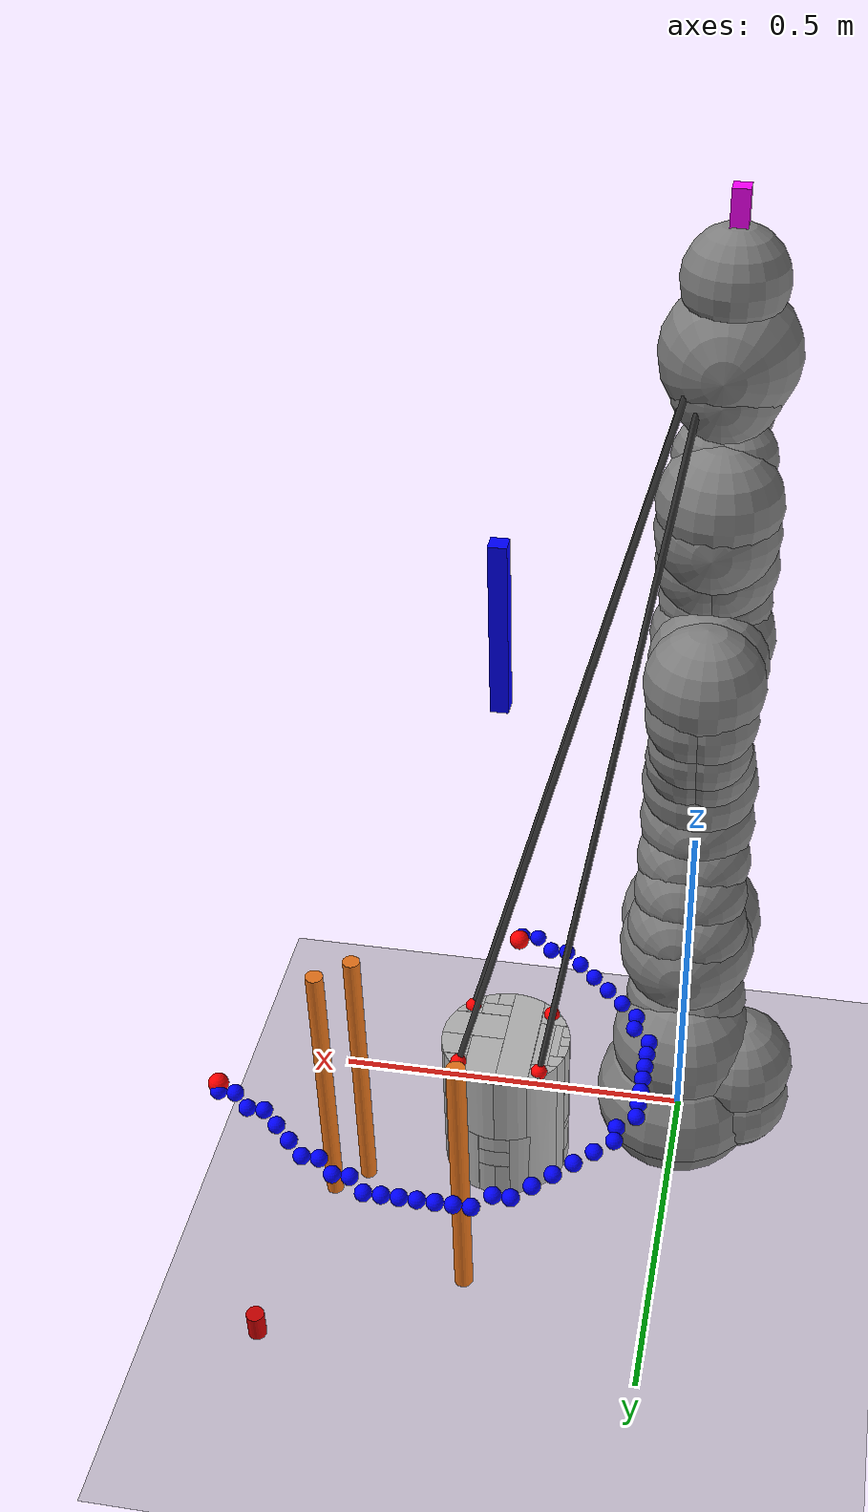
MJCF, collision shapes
<mujoco model="iiwa14_lifting_scene_sensors_compatible">

  <!-- 加载机械臂 -->
  <include file="iiwa14.xml"/>

  <option integrator="implicitfast" gravity="0 0 -9.81"/>

  <asset>
    <material name="groundplane" rgba="0.3 0.3 0.3 1"/>
    <material name="concrete" rgba="0.7 0.7 0.7 1.0"/>
    <material name="rope" rgba="0.2 0.2 0.2 1"/>
    <material name="red" rgba="0.8 0 0 1"/>
    <material name="steel" rgba="0.6 0.6 0.6 1"/>
    <material name="obstacle" rgba="0.9 0.45 0.1 1"/>

    <mesh name="hollow_cylinder_convex_0"  file="hollow_cylinder_convex_0.stl"/>
    <mesh name="hollow_cylinder_convex_1"  file="hollow_cylinder_convex_1.stl"/>
    <mesh name="hollow_cylinder_convex_2"  file="hollow_cylinder_convex_2.stl"/>
    <mesh name="hollow_cylinder_convex_3"  file="hollow_cylinder_convex_3.stl"/>
    <mesh name="hollow_cylinder_convex_4"  file="hollow_cylinder_convex_4.stl"/>
    <mesh name="hollow_cylinder_convex_5"  file="hollow_cylinder_convex_5.stl"/>
    <mesh name="hollow_cylinder_convex_6"  file="hollow_cylinder_convex_6.stl"/>
    <mesh name="hollow_cylinder_convex_7"  file="hollow_cylinder_convex_7.stl"/>
    <mesh name="hollow_cylinder_convex_8"  file="hollow_cylinder_convex_8.stl"/>
    <mesh name="hollow_cylinder_convex_9"  file="hollow_cylinder_convex_9.stl"/>
    <mesh name="hollow_cylinder_convex_10"  file="hollow_cylinder_convex_10.stl"/>
    <mesh name="hollow_cylinder_convex_11"  file="hollow_cylinder_convex_11.stl"/>
    <mesh name="hollow_cylinder_convex_12"  file="hollow_cylinder_convex_12.stl"/>
    <mesh name="hollow_cylinder_convex_13"  file="hollow_cylinder_convex_13.stl"/>
    <mesh name="hollow_cylinder_convex_14"  file="hollow_cylinder_convex_14.stl"/>
    <mesh name="hollow_cylinder_convex_15"  file="hollow_cylinder_convex_15.stl"/>
    <mesh name="hollow_cylinder_convex_16"  file="hollow_cylinder_convex_16.stl"/>
    <mesh name="hollow_cylinder_convex_17"  file="hollow_cylinder_convex_17.stl"/>
    <mesh name="hollow_cylinder_convex_18"  file="hollow_cylinder_convex_18.stl"/>
    <mesh name="hollow_cylinder_convex_19"  file="hollow_cylinder_convex_19.stl"/>
    <mesh name="hollow_cylinder_convex_20"  file="hollow_cylinder_convex_20.stl"/>
    <mesh name="hollow_cylinder_convex_21"  file="hollow_cylinder_convex_21.stl"/>
    <mesh name="hollow_cylinder_convex_22"  file="hollow_cylinder_convex_22.stl"/>
    <mesh name="hollow_cylinder_convex_23"  file="hollow_cylinder_convex_23.stl"/>
    <mesh name="hollow_cylinder_convex_24"  file="hollow_cylinder_convex_24.stl"/>
    <mesh name="hollow_cylinder_convex_25"  file="hollow_cylinder_convex_25.stl"/>
    <mesh name="hollow_cylinder_convex_26"  file="hollow_cylinder_convex_26.stl"/>
    <mesh name="hollow_cylinder_convex_27"  file="hollow_cylinder_convex_27.stl"/>
    <mesh name="hollow_cylinder_convex_28"  file="hollow_cylinder_convex_28.stl"/>
    <mesh name="hollow_cylinder_convex_29"  file="hollow_cylinder_convex_29.stl"/>
    <mesh name="hollow_cylinder_convex_30"  file="hollow_cylinder_convex_30.stl"/>
    <mesh name="hollow_cylinder_convex_31"  file="hollow_cylinder_convex_31.stl"/>
    <mesh name="hollow_cylinder_convex_32"  file="hollow_cylinder_convex_32.stl"/>
    <mesh name="hollow_cylinder_convex_33"  file="hollow_cylinder_convex_33.stl"/>
    <mesh name="hollow_cylinder_convex_34"  file="hollow_cylinder_convex_34.stl"/>
    <mesh name="hollow_cylinder_convex_35"  file="hollow_cylinder_convex_35.stl"/>
    <mesh name="hollow_cylinder_convex_36"  file="hollow_cylinder_convex_36.stl"/>
    <mesh name="hollow_cylinder_convex_37"  file="hollow_cylinder_convex_37.stl"/>
    <mesh name="hollow_cylinder_convex_38"  file="hollow_cylinder_convex_38.stl"/>
    <mesh name="hollow_cylinder_convex_39"  file="hollow_cylinder_convex_39.stl"/>
    <mesh name="hollow_cylinder_convex_40"  file="hollow_cylinder_convex_40.stl"/>
    <mesh name="hollow_cylinder_convex_41"  file="hollow_cylinder_convex_41.stl"/>
    <mesh name="hollow_cylinder_convex_42"  file="hollow_cylinder_convex_42.stl"/>
    <mesh name="hollow_cylinder_convex_43"  file="hollow_cylinder_convex_43.stl"/>
    <mesh name="hollow_cylinder_convex_44"  file="hollow_cylinder_convex_44.stl"/>
    <mesh name="hollow_cylinder_convex_45"  file="hollow_cylinder_convex_45.stl"/>
    <mesh name="hollow_cylinder_convex_46"  file="hollow_cylinder_convex_46.stl"/>
    <mesh name="hollow_cylinder_convex_47"  file="hollow_cylinder_convex_47.stl"/>
    <mesh name="hollow_cylinder_convex_48"  file="hollow_cylinder_convex_48.stl"/>
    <mesh name="hollow_cylinder_convex_49"  file="hollow_cylinder_convex_49.stl"/>
    <mesh name="hollow_cylinder_convex_50"  file="hollow_cylinder_convex_50.stl"/>
    <mesh name="hollow_cylinder_convex_51"  file="hollow_cylinder_convex_51.stl"/>
    <mesh name="hollow_cylinder_convex_52"  file="hollow_cylinder_convex_52.stl"/>
    <mesh name="hollow_cylinder_convex_53"  file="hollow_cylinder_convex_53.stl"/>
    <mesh name="hollow_cylinder_convex_54"  file="hollow_cylinder_convex_54.stl"/>
    <mesh name="hollow_cylinder_convex_55"  file="hollow_cylinder_convex_55.stl"/>
    <mesh name="hollow_cylinder_convex_56"  file="hollow_cylinder_convex_56.stl"/>
    <mesh name="hollow_cylinder_convex_57"  file="hollow_cylinder_convex_57.stl"/>
    <mesh name="hollow_cylinder_convex_58"  file="hollow_cylinder_convex_58.stl"/>
    <mesh name="hollow_cylinder_convex_59"  file="hollow_cylinder_convex_59.stl"/>
    <mesh name="hollow_cylinder_convex_60"  file="hollow_cylinder_convex_60.stl"/>
    <mesh name="hollow_cylinder_convex_61"  file="hollow_cylinder_convex_61.stl"/>
    <mesh name="hollow_cylinder_convex_62"  file="hollow_cylinder_convex_62.stl"/>
    <mesh name="hollow_cylinder_convex_63" file="hollow_cylinder_convex_63.stl"/>
  </asset>

  <visual>
    <global offwidth="640" offheight="480"/>
  </visual>

  <worldbody>
    <!-- 光照与地面 -->
    <light pos="1.5 0 1.5" dir="1 0 -1" directional="true"/>
    <geom name="floor" size="0 0 0.05" type="plane" material="groundplane"/>

    <!-- 路径障碍物 0 (静态) -->
    <body name="obstacle_0" pos="0.4460238408369178 0.282684224144374 0.25">
      <geom type="cylinder" size="0.011411688887367247 0.2" pos="0 0 0" material="obstacle" contype="1" conaffinity="1"/>
    </body>

    <!-- 路径障碍物 1 (静态) -->
    <body name="obstacle_1" pos="0.40692537642809484 0.2483151245426632 0.25">
      <geom type="cylinder" size="0.011008938884365563 0.2" pos="0 0 0" material="obstacle" contype="1" conaffinity="1"/>
    </body>

    <!-- 路径障碍物 2 (静态) -->
    <body name="obstacle_2" pos="0.24027390123127024 0.40839523592196725 0.25">
      <geom type="cylinder" size="0.01204332152719229 0.2" pos="0 0 0" material="obstacle" contype="1" conaffinity="1"/>
    </body>

    <!-- 规划路径点 0 (可视化) -->
    <body name="path_pt_0" pos="0.19823057970407798 0.18730618565829765 0.47000000000000003">
      <geom type="sphere" size="0.01" rgba="0 0 1 1" contype="0" conaffinity="0"/>
    </body>

    <!-- 规划路径点 1 (可视化) -->
    <body name="path_pt_1" pos="0.17823057970407796 0.18730618565829765 0.47000000000000003">
      <geom type="sphere" size="0.01" rgba="0 0 1 1" contype="0" conaffinity="0"/>
    </body>

    <!-- 规划路径点 2 (可视化) -->
    <body name="path_pt_2" pos="0.15823057970407794 0.20730618565829767 0.47000000000000003">
      <geom type="sphere" size="0.01" rgba="0 0 1 1" contype="0" conaffinity="0"/>
    </body>

    <!-- 规划路径点 3 (可视化) -->
    <body name="path_pt_3" pos="0.13823057970407798 0.20730618565829767 0.47000000000000003">
      <geom type="sphere" size="0.01" rgba="0 0 1 1" contype="0" conaffinity="0"/>
    </body>

    <!-- 规划路径点 4 (可视化) -->
    <body name="path_pt_4" pos="0.11823057970407796 0.22730618565829763 0.47000000000000003">
      <geom type="sphere" size="0.01" rgba="0 0 1 1" contype="0" conaffinity="0"/>
    </body>

    <!-- 规划路径点 5 (可视化) -->
    <body name="path_pt_5" pos="0.09823057970407795 0.24730618565829765 0.47000000000000003">
      <geom type="sphere" size="0.01" rgba="0 0 1 1" contype="0" conaffinity="0"/>
    </body>

    <!-- 规划路径点 6 (可视化) -->
    <body name="path_pt_6" pos="0.07823057970407798 0.26730618565829767 0.47000000000000003">
      <geom type="sphere" size="0.01" rgba="0 0 1 1" contype="0" conaffinity="0"/>
    </body>

    <!-- 规划路径点 7 (可视化) -->
    <body name="path_pt_7" pos="0.05823057970407797 0.2873061856582977 0.47000000000000003">
      <geom type="sphere" size="0.01" rgba="0 0 1 1" contype="0" conaffinity="0"/>
    </body>

    <!-- 规划路径点 8 (可视化) -->
    <body name="path_pt_8" pos="0.03823057970407795 0.3073061856582977 0.47000000000000003">
      <geom type="sphere" size="0.01" rgba="0 0 1 1" contype="0" conaffinity="0"/>
    </body>

    <!-- 规划路径点 9 (可视化) -->
    <body name="path_pt_9" pos="0.03823057970407795 0.3273061856582976 0.47000000000000003">
      <geom type="sphere" size="0.01" rgba="0 0 1 1" contype="0" conaffinity="0"/>
    </body>

    <!-- 规划路径点 10 (可视化) -->
    <body name="path_pt_10" pos="0.01823057970407793 0.34730618565829763 0.47000000000000003">
      <geom type="sphere" size="0.01" rgba="0 0 1 1" contype="0" conaffinity="0"/>
    </body>

    <!-- 规划路径点 11 (可视化) -->
    <body name="path_pt_11" pos="0.01823057970407793 0.36730618565829765 0.47000000000000003">
      <geom type="sphere" size="0.01" rgba="0 0 1 1" contype="0" conaffinity="0"/>
    </body>

    <!-- 规划路径点 12 (可视化) -->
    <body name="path_pt_12" pos="0.01823057970407793 0.38730618565829766 0.47000000000000003">
      <geom type="sphere" size="0.01" rgba="0 0 1 1" contype="0" conaffinity="0"/>
    </body>

    <!-- 规划路径点 13 (可视化) -->
    <body name="path_pt_13" pos="0.01823057970407793 0.4073061856582977 0.47000000000000003">
      <geom type="sphere" size="0.01" rgba="0 0 1 1" contype="0" conaffinity="0"/>
    </body>

    <!-- 规划路径点 14 (可视化) -->
    <body name="path_pt_14" pos="0.01823057970407793 0.4273061856582977 0.47000000000000003">
      <geom type="sphere" size="0.01" rgba="0 0 1 1" contype="0" conaffinity="0"/>
    </body>

    <!-- 规划路径点 15 (可视化) -->
    <body name="path_pt_15" pos="0.01823057970407793 0.4473061856582976 0.47000000000000003">
      <geom type="sphere" size="0.01" rgba="0 0 1 1" contype="0" conaffinity="0"/>
    </body>

    <!-- 规划路径点 16 (可视化) -->
    <body name="path_pt_16" pos="0.01823057970407793 0.4673061856582976 0.47000000000000003">
      <geom type="sphere" size="0.01" rgba="0 0 1 1" contype="0" conaffinity="0"/>
    </body>

    <!-- 规划路径点 17 (可视化) -->
    <body name="path_pt_17" pos="0.03823057970407795 0.48730618565829764 0.47000000000000003">
      <geom type="sphere" size="0.01" rgba="0 0 1 1" contype="0" conaffinity="0"/>
    </body>

    <!-- 规划路径点 18 (可视化) -->
    <body name="path_pt_18" pos="0.03823057970407795 0.5073061856582977 0.47000000000000003">
      <geom type="sphere" size="0.01" rgba="0 0 1 1" contype="0" conaffinity="0"/>
    </body>

    <!-- 规划路径点 19 (可视化) -->
    <body name="path_pt_19" pos="0.05823057970407797 0.5273061856582977 0.47000000000000003">
      <geom type="sphere" size="0.01" rgba="0 0 1 1" contype="0" conaffinity="0"/>
    </body>

    <!-- 规划路径点 20 (可视化) -->
    <body name="path_pt_20" pos="0.07823057970407798 0.5473061856582977 0.47000000000000003">
      <geom type="sphere" size="0.01" rgba="0 0 1 1" contype="0" conaffinity="0"/>
    </body>

    <!-- 规划路径点 21 (可视化) -->
    <body name="path_pt_21" pos="0.09823057970407795 0.5673061856582977 0.47000000000000003">
      <geom type="sphere" size="0.01" rgba="0 0 1 1" contype="0" conaffinity="0"/>
    </body>

    <!-- 规划路径点 22 (可视化) -->
    <body name="path_pt_22" pos="0.11823057970407796 0.5873061856582976 0.47000000000000003">
      <geom type="sphere" size="0.01" rgba="0 0 1 1" contype="0" conaffinity="0"/>
    </body>

    <!-- 规划路径点 23 (可视化) -->
    <body name="path_pt_23" pos="0.13823057970407798 0.6073061856582976 0.47000000000000003">
      <geom type="sphere" size="0.01" rgba="0 0 1 1" contype="0" conaffinity="0"/>
    </body>

    <!-- 规划路径点 24 (可视化) -->
    <body name="path_pt_24" pos="0.15823057970407794 0.6073061856582976 0.47000000000000003">
      <geom type="sphere" size="0.01" rgba="0 0 1 1" contype="0" conaffinity="0"/>
    </body>

    <!-- 规划路径点 25 (可视化) -->
    <body name="path_pt_25" pos="0.17823057970407796 0.6273061856582977 0.47000000000000003">
      <geom type="sphere" size="0.01" rgba="0 0 1 1" contype="0" conaffinity="0"/>
    </body>

    <!-- 规划路径点 26 (可视化) -->
    <body name="path_pt_26" pos="0.19823057970407798 0.6273061856582977 0.47000000000000003">
      <geom type="sphere" size="0.01" rgba="0 0 1 1" contype="0" conaffinity="0"/>
    </body>

    <!-- 规划路径点 27 (可视化) -->
    <body name="path_pt_27" pos="0.21823057970407794 0.6273061856582977 0.47000000000000003">
      <geom type="sphere" size="0.01" rgba="0 0 1 1" contype="0" conaffinity="0"/>
    </body>

    <!-- 规划路径点 28 (可视化) -->
    <body name="path_pt_28" pos="0.23823057970407796 0.6273061856582977 0.47000000000000003">
      <geom type="sphere" size="0.01" rgba="0 0 1 1" contype="0" conaffinity="0"/>
    </body>

    <!-- 规划路径点 29 (可视化) -->
    <body name="path_pt_29" pos="0.258230579704078 0.6273061856582977 0.47000000000000003">
      <geom type="sphere" size="0.01" rgba="0 0 1 1" contype="0" conaffinity="0"/>
    </body>

    <!-- 规划路径点 30 (可视化) -->
    <body name="path_pt_30" pos="0.278230579704078 0.6273061856582977 0.47000000000000003">
      <geom type="sphere" size="0.01" rgba="0 0 1 1" contype="0" conaffinity="0"/>
    </body>

    <!-- 规划路径点 31 (可视化) -->
    <body name="path_pt_31" pos="0.298230579704078 0.6273061856582977 0.47000000000000003">
      <geom type="sphere" size="0.01" rgba="0 0 1 1" contype="0" conaffinity="0"/>
    </body>

    <!-- 规划路径点 32 (可视化) -->
    <body name="path_pt_32" pos="0.3182305797040779 0.6073061856582976 0.47000000000000003">
      <geom type="sphere" size="0.01" rgba="0 0 1 1" contype="0" conaffinity="0"/>
    </body>

    <!-- 规划路径点 33 (可视化) -->
    <body name="path_pt_33" pos="0.33823057970407794 0.6073061856582976 0.47000000000000003">
      <geom type="sphere" size="0.01" rgba="0 0 1 1" contype="0" conaffinity="0"/>
    </body>

    <!-- 规划路径点 34 (可视化) -->
    <body name="path_pt_34" pos="0.35823057970407796 0.5873061856582976 0.47000000000000003">
      <geom type="sphere" size="0.01" rgba="0 0 1 1" contype="0" conaffinity="0"/>
    </body>

    <!-- 规划路径点 35 (可视化) -->
    <body name="path_pt_35" pos="0.378230579704078 0.5873061856582976 0.47000000000000003">
      <geom type="sphere" size="0.01" rgba="0 0 1 1" contype="0" conaffinity="0"/>
    </body>

    <!-- 规划路径点 36 (可视化) -->
    <body name="path_pt_36" pos="0.398230579704078 0.5673061856582977 0.47000000000000003">
      <geom type="sphere" size="0.01" rgba="0 0 1 1" contype="0" conaffinity="0"/>
    </body>

    <!-- 规划路径点 37 (可视化) -->
    <body name="path_pt_37" pos="0.418230579704078 0.5473061856582977 0.47000000000000003">
      <geom type="sphere" size="0.01" rgba="0 0 1 1" contype="0" conaffinity="0"/>
    </body>

    <!-- 规划路径点 38 (可视化) -->
    <body name="path_pt_38" pos="0.4382305797040779 0.5273061856582977 0.47000000000000003">
      <geom type="sphere" size="0.01" rgba="0 0 1 1" contype="0" conaffinity="0"/>
    </body>

    <!-- 规划路径点 39 (可视化) -->
    <body name="path_pt_39" pos="0.45823057970407793 0.5273061856582977 0.47000000000000003">
      <geom type="sphere" size="0.01" rgba="0 0 1 1" contype="0" conaffinity="0"/>
    </body>

    <!-- 规划路径点 40 (可视化) -->
    <body name="path_pt_40" pos="0.47823057970407795 0.5073061856582977 0.47000000000000003">
      <geom type="sphere" size="0.01" rgba="0 0 1 1" contype="0" conaffinity="0"/>
    </body>

    <!-- 规划路径点 41 (可视化) -->
    <body name="path_pt_41" pos="0.49823057970407797 0.5073061856582977 0.47000000000000003">
      <geom type="sphere" size="0.01" rgba="0 0 1 1" contype="0" conaffinity="0"/>
    </body>

    <!-- 规划起点 (可视化) -->
    <body name="path_start" pos="0.2 0.2 0.47500000000000003">
      <geom type="sphere" size="0.012" rgba="1 0 0 1" contype="0" conaffinity="0"/>
    </body>

    <!-- 规划终点 (可视化) -->
    <body name="path_goal" pos="0.5 0.5 0.47500000000000003">
      <geom type="sphere" size="0.012" rgba="1 0 0 1" contype="0" conaffinity="0"/>
    </body>

    <!--  固定钢筋 -->
    <body name="rebar_base" pos="0.5 0.5 0">
      <geom type="cylinder" size="0.012 0.02" pos=" 0 0 0.02" material="red" contype="1" conaffinity="1"/>
    </body>

    <!-- 吊装构件 -->
    <body name="prefab" pos="0.2 0.3 0.3">
      <joint type="free"/>
      <geom type="mesh" mesh="hollow_cylinder_convex_0" material="concrete" mass="0.0156"/>
      <geom type="mesh" mesh="hollow_cylinder_convex_1" material="concrete" mass="0.0156"/>
      <geom type="mesh" mesh="hollow_cylinder_convex_2" material="concrete" mass="0.0156"/>
      <geom type="mesh" mesh="hollow_cylinder_convex_3" material="concrete" mass="0.0156"/>
      <geom type="mesh" mesh="hollow_cylinder_convex_4" material="concrete" mass="0.0156"/>
      <geom type="mesh" mesh="hollow_cylinder_convex_5" material="concrete" mass="0.0156"/>
      <geom type="mesh" mesh="hollow_cylinder_convex_6" material="concrete" mass="0.0156"/>
      <geom type="mesh" mesh="hollow_cylinder_convex_7" material="concrete" mass="0.0156"/>
      <geom type="mesh" mesh="hollow_cylinder_convex_8" material="concrete" mass="0.0156"/>
      <geom type="mesh" mesh="hollow_cylinder_convex_9" material="concrete" mass="0.0156"/>
      <geom type="mesh" mesh="hollow_cylinder_convex_10" material="concrete" mass="0.0156"/>
      <geom type="mesh" mesh="hollow_cylinder_convex_11" material="concrete" mass="0.0156"/>
      <geom type="mesh" mesh="hollow_cylinder_convex_12" material="concrete" mass="0.0156"/>
      <geom type="mesh" mesh="hollow_cylinder_convex_13" material="concrete" mass="0.0156"/>
      <geom type="mesh" mesh="hollow_cylinder_convex_14" material="concrete" mass="0.0156"/>
      <geom type="mesh" mesh="hollow_cylinder_convex_15" material="concrete" mass="0.0156"/>
      <geom type="mesh" mesh="hollow_cylinder_convex_16" material="concrete" mass="0.0156"/>
      <geom type="mesh" mesh="hollow_cylinder_convex_17" material="concrete" mass="0.0156"/>
      <geom type="mesh" mesh="hollow_cylinder_convex_18" material="concrete" mass="0.0156"/>
      <geom type="mesh" mesh="hollow_cylinder_convex_19" material="concrete" mass="0.0156"/>
      <geom type="mesh" mesh="hollow_cylinder_convex_20" material="concrete" mass="0.0156"/>
      <geom type="mesh" mesh="hollow_cylinder_convex_21" material="concrete" mass="0.0156"/>
      <geom type="mesh" mesh="hollow_cylinder_convex_22" material="concrete" mass="0.0156"/>
      <geom type="mesh" mesh="hollow_cylinder_convex_23" material="concrete" mass="0.0156"/>
      <geom type="mesh" mesh="hollow_cylinder_convex_24" material="concrete" mass="0.0156"/>
      <geom type="mesh" mesh="hollow_cylinder_convex_25" material="concrete" mass="0.0156"/>
      <geom type="mesh" mesh="hollow_cylinder_convex_26" material="concrete" mass="0.0156"/>
      <geom type="mesh" mesh="hollow_cylinder_convex_27" material="concrete" mass="0.0156"/>
      <geom type="mesh" mesh="hollow_cylinder_convex_28" material="concrete" mass="0.0156"/>
      <geom type="mesh" mesh="hollow_cylinder_convex_29" material="concrete" mass="0.0156"/>
      <geom type="mesh" mesh="hollow_cylinder_convex_30" material="concrete" mass="0.0156"/>
      <geom type="mesh" mesh="hollow_cylinder_convex_31" material="concrete" mass="0.0156"/>
      <geom type="mesh" mesh="hollow_cylinder_convex_32" material="concrete" mass="0.0156"/>
      <geom type="mesh" mesh="hollow_cylinder_convex_33" material="concrete" mass="0.0156"/>
      <geom type="mesh" mesh="hollow_cylinder_convex_34" material="concrete" mass="0.0156"/>
      <geom type="mesh" mesh="hollow_cylinder_convex_35" material="concrete" mass="0.0156"/>
      <geom type="mesh" mesh="hollow_cylinder_convex_36" material="concrete" mass="0.0156"/>
      <geom type="mesh" mesh="hollow_cylinder_convex_37" material="concrete" mass="0.0156"/>
      <geom type="mesh" mesh="hollow_cylinder_convex_38" material="concrete" mass="0.0156"/>
      <geom type="mesh" mesh="hollow_cylinder_convex_39" material="concrete" mass="0.0156"/>
      <geom type="mesh" mesh="hollow_cylinder_convex_40" material="concrete" mass="0.0156"/>
      <geom type="mesh" mesh="hollow_cylinder_convex_41" material="concrete" mass="0.0156"/>
      <geom type="mesh" mesh="hollow_cylinder_convex_42" material="concrete" mass="0.0156"/>
      <geom type="mesh" mesh="hollow_cylinder_convex_43" material="concrete" mass="0.0156"/>
      <geom type="mesh" mesh="hollow_cylinder_convex_44" material="concrete" mass="0.0156"/>
      <geom type="mesh" mesh="hollow_cylinder_convex_45" material="concrete" mass="0.0156"/>
      <geom type="mesh" mesh="hollow_cylinder_convex_46" material="concrete" mass="0.0156"/>
      <geom type="mesh" mesh="hollow_cylinder_convex_47" material="concrete" mass="0.0156"/>
      <geom type="mesh" mesh="hollow_cylinder_convex_48" material="concrete" mass="0.0156"/>
      <geom type="mesh" mesh="hollow_cylinder_convex_49" material="concrete" mass="0.0156"/>
      <geom type="mesh" mesh="hollow_cylinder_convex_50" material="concrete" mass="0.0156"/>
      <geom type="mesh" mesh="hollow_cylinder_convex_51" material="concrete" mass="0.0156"/>
      <geom type="mesh" mesh="hollow_cylinder_convex_52" material="concrete" mass="0.0156"/>
      <geom type="mesh" mesh="hollow_cylinder_convex_53" material="concrete" mass="0.0156"/>
      <geom type="mesh" mesh="hollow_cylinder_convex_54" material="concrete" mass="0.0156"/>
      <geom type="mesh" mesh="hollow_cylinder_convex_55" material="concrete" mass="0.0156"/>
      <geom type="mesh" mesh="hollow_cylinder_convex_56" material="concrete" mass="0.0156"/>
      <geom type="mesh" mesh="hollow_cylinder_convex_57" material="concrete" mass="0.0156"/>
      <geom type="mesh" mesh="hollow_cylinder_convex_58" material="concrete" mass="0.0156"/>
      <geom type="mesh" mesh="hollow_cylinder_convex_59" material="concrete" mass="1"/>
      <geom type="mesh" mesh="hollow_cylinder_convex_60" material="concrete" mass="0.0156"/>
      <geom type="mesh" mesh="hollow_cylinder_convex_61" material="concrete" mass="0.0156"/>
      <geom type="mesh" mesh="hollow_cylinder_convex_62" material="concrete" mass="0.0156"/>
      <geom type="mesh" mesh="hollow_cylinder_convex_63" material="concrete" mass="0.0156"/>

      <!-- 四个吊点 -->
      <site name="lift_fl" pos=" 0.05  0.05  0.1" size="0.01" rgba="1 0 0 1"/>
      <site name="lift_fr" pos=" 0.05 -0.05  0.1" size="0.01" rgba="1 0 0 1"/>
      <site name="lift_rl" pos="-0.05  0.05  0.1" size="0.01" rgba="1 0 0 1"/>
      <site name="lift_rr" pos="-0.05 -0.05  0.1" size="0.01" rgba="1 0 0 1"/>

      <!-- ✅ IMU 传感器安装点 -->
      <site name="imu_site" pos="0 0 0" size="0.01" rgba="0 1 0 1"/>
    </body>

    <body mocap="true" name="mocap" pos="0.2 0.3 1.0" quat="0 0 1 0">
      <geom type="box" size="0.01 0.01 0.1" rgba="0 0 1 1"/>
    </body>

  </worldbody>

  <!-- 绑定挂点到机械臂末端 -->
  <equality>
      <weld body1="link7" body2="mocap"
            solimp="0.99 0.99 0.01"
            solref="0.001 1"
            relpose="0 0 0.045 1 0 0 0"/>
  </equality>

  <!-- 四根吊索 -->
  <tendon>
    <spatial name="rope_fl" limited="true" range="0 0.604152" width="0.004" material="rope" stiffness="8">
      <site site="attachment_site"/>
      <site site="lift_fl"/>
    </spatial>
    <spatial name="rope_fr" limited="true" range="0 0.604152" width="0.004" material="rope" stiffness="8">
      <site site="attachment_site"/>
      <site site="lift_fr"/>
    </spatial>
    <spatial name="rope_rl" limited="true" range="0 0.604152" width="0.004" material="rope" stiffness="8">
      <site site="attachment_site"/>
      <site site="lift_rl"/>
    </spatial>
    <spatial name="rope_rr" limited="true" range="0 0.604152" width="0.004" material="rope" stiffness="8">
      <site site="attachment_site"/>
      <site site="lift_rr"/>
    </spatial>
  </tendon>

  <sensor>
    <framepos name="prefab/pos" objtype="site" objname="imu_site"/>
    <framelinvel name="prefab/vel" objtype="site" objname="imu_site"/>
    <framepos name="end/pos" objtype="site" objname="attachment_site"/>
    <framelinvel name="end/vel" objtype="site" objname="attachment_site"/>
  </sensor>

  <keyframe>
    <key name="home" qpos="0.955545 0.391462 -2.86463 0.00599717 2.97003 2.37487 7.3179
                                 0.2 0.3 0.3  1 0 0 0"/>
  </keyframe>

</mujoco>

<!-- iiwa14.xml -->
<mujoco model="iiwa14">
  <compiler angle="radian" meshdir="assets" autolimits="true"/>
  <option integrator="implicitfast"/>

  <default>
    <default class="iiwa">
      <material specular="0.5" shininess="0.25"/>
      <joint axis="0 0 1" damping="1.2"/>
      <general gaintype="fixed" biastype="affine" gainprm="0" biasprm="0 -50 -5"/>
      <default class="joint1">
        <joint range="-2.96706 2.96706"/>
        <general ctrlrange="-2.96706 2.96706"/>
        <default class="joint2">
          <joint range="-2.0944 2.0944"/>
          <general ctrlrange="-2.0944 2.0944"/>
        </default>
      </default>
      <default class="joint3">
        <joint range="-3.05433 3.05433"/>
        <general ctrlrange="-3.05433 3.05433"/>
      </default>
      <default class="visual">
        <geom type="mesh" contype="0" conaffinity="0" group="2" material="gray"/>
      </default>
      <default class="collision">
        <geom group="3"/>
      </default>
      <site size="0.001" rgba="1 0 0 1" group="4"/>
    </default>
  </default>

  <asset>
    <material class="iiwa" name="gray" rgba="0.4 0.4 0.4 1"/>
    <material class="iiwa" name="light_gray" rgba="0.6 0.6 0.6 1"/>
    <material class="iiwa" name="black" rgba="0 0 0 1"/>
    <material class="iiwa" name="orange" rgba="1 0.423529 0.0392157 1"/>

    <mesh file="link_0.obj"/>
    <mesh file="link_1.obj"/>
    <mesh file="link_2_orange.obj"/>
    <mesh file="link_2_grey.obj"/>
    <mesh file="link_3.obj"/>
    <mesh file="band.obj"/>
    <mesh file="kuka.obj"/>
    <mesh file="link_4_orange.obj"/>
    <mesh file="link_4_grey.obj"/>
    <mesh file="link_5.obj"/>
    <mesh file="link_6_orange.obj"/>
    <mesh file="link_6_grey.obj"/>
    <mesh file="link_7.obj"/>
  </asset>

  <worldbody>
    <light name="top" pos="0 0 2" mode="trackcom"/>
    <body name="base" childclass="iiwa">
      <inertial mass="5" pos="-0.1 0 0.07" diaginertia="0.05 0.06 0.03"/>
      <geom class="visual" mesh="link_0"/>
      <geom class="collision" size="0.12" pos="0 0 0.03"/>
      <geom class="collision" size="0.08" pos="-0.08 0 0.103"/>
      <geom class="collision" size="0.08" pos="-0.08 0 0.04"/>
      <geom class="collision" size="0.1" pos="0 0 0.14"/>
      <body name="link1" pos="0 0 0.1575">
        <inertial mass="5.76" pos="0 -0.03 0.12" diaginertia="0.0333 0.033 0.0123"/>
        <joint name="joint1" class="joint1"/>
        <geom class="visual" mesh="link_1"/>
        <geom class="collision" size="0.08" pos="0 0 -0.0005"/>
        <geom class="collision" size="0.075" pos="0.01 -0.025 0.0425"/>
        <geom class="collision" size="0.075" pos="-0.01 -0.025 0.0425"/>
        <geom class="collision" size="0.07" pos="0.01 -0.045 0.1025"/>
        <geom class="collision" size="0.07" pos="-0.01 -0.045 0.1025"/>
        <body name="link2" pos="0 0 0.2025" quat="0 0 1 1">
          <inertial mass="6.35" pos="0.0003 0.059 0.042" diaginertia="0.0305 0.0304 0.011" quat="0 0 1 1"/>
          <joint name="joint2" class="joint2"/>
          <geom class="visual" material="orange" mesh="link_2_orange"/>
          <geom class="visual" mesh="link_2_grey"/>
          <geom class="collision" size="0.095" pos="0 0 -0.01"/>
          <geom class="collision" size="0.09" pos="0 0 0.045"/>
          <geom class="collision" size="0.07" pos="-0.01 0.04 0.054"/>
          <geom class="collision" size="0.065" pos="-0.01 0.09 0.04"/>
          <geom class="collision" size="0.065" pos="-0.01 0.13 0.02"/>
          <geom class="collision" size="0.07" pos="0.01 0.04 0.054"/>
          <geom class="collision" size="0.065" pos="0.01 0.09 0.04"/>
          <geom class="collision" size="0.065" pos="0.01 0.13 0.02"/>
          <geom class="collision" size="0.075" pos="0 0.18 0"/>
          <body name="link3" pos="0 0.2045 0" quat="0 0 1 1">
            <inertial mass="3.5" pos="0 0.03 0.13" diaginertia="0.025 0.0238 0.0076"/>
            <joint name="joint3" class="joint1"/>
            <geom class="visual" mesh="link_3"/>
            <geom class="visual" material="light_gray" mesh="band"/>
            <geom class="visual" material="black" mesh="kuka"/>
            <geom class="collision" size="0.075" pos="0 0 0.0355"/>
            <geom class="collision" size="0.06" pos="0.01 0.023 0.0855"/>
            <geom class="collision" size="0.055" pos="0.01 0.048 0.1255"/>
            <geom class="collision" size="0.06" pos="0.01 0.056 0.1755"/>
            <geom class="collision" size="0.06" pos="-0.01 0.023 0.0855"/>
            <geom class="collision" size="0.055" pos="-0.01 0.048 0.1255"/>
            <geom class="collision" size="0.06" pos="-0.01 0.056 0.1755"/>
            <geom class="collision" size="0.075" pos="0 0.045 0.2155"/>
            <geom class="collision" size="0.075" pos="0 0 0.2155"/>
            <body name="link4" pos="0 0 0.2155" quat="1 1 0 0">
              <inertial mass="3.5" pos="0 0.067 0.034" diaginertia="0.017 0.0164 0.006" quat="1 1 0 0"/>
              <joint name="joint4" class="joint2"/>
              <geom class="visual" material="orange" mesh="link_4_orange"/>
              <geom class="visual" mesh="link_4_grey"/>
              <geom class="collision" size="0.078" pos="0 0.01 0.046"/>
              <geom class="collision" size="0.06" pos="0.01 0.06 0.052"/>
              <geom class="collision" size="0.065" pos="0.01 0.12 0.034"/>
              <geom class="collision" size="0.06" pos="-0.01 0.06 0.052"/>
              <geom class="collision" size="0.065" pos="-0.01 0.12 0.034"/>
              <geom class="collision" size="0.075" pos="0 0.184 0"/>
              <body name="link5" pos="0 0.1845 0" quat="0 0 1 1">
                <inertial mass="3.5" pos="0.0001 0.021 0.076" diaginertia="0.01 0.0087 0.00449"/>
                <joint name="joint5" class="joint1"/>
                <geom class="visual" mesh="link_5"/>
                <geom class="visual" material="light_gray" mesh="band"/>
                <geom class="visual" material="black" mesh="kuka"/>
                <geom class="collision" size="0.075" pos="0 0 0.0335"/>
                <geom class="collision" size="0.05" pos="-0.012 0.031 0.0755"/>
                <geom class="collision" size="0.05" pos="0.012 0.031 0.0755"/>
                <geom class="collision" size="0.04" pos="-0.012 0.06 0.1155"/>
                <geom class="collision" size="0.04" pos="0.012 0.06 0.1155"/>
                <geom class="collision" size="0.04" pos="-0.01 0.065 0.1655"/>
                <geom class="collision" size="0.04" pos="0.01 0.065 0.1655"/>
                <geom class="collision" size="0.035" pos="-0.012 0.065 0.1855"/>
                <geom class="collision" size="0.035" pos="0.012 0.065 0.1855"/>
                <body name="link6" pos="0 0 0.2155" quat="1 1 0 0">
                  <inertial mass="1.8" pos="0 0.0006 0.0004" diaginertia="0.0049 0.0047 0.0036" quat="1 1 0 0"/>
                  <joint name="joint6" class="joint2"/>
                  <geom class="visual" material="orange" mesh="link_6_orange"/>
                  <geom class="visual" mesh="link_6_grey"/>
                  <geom class="collision" size="0.055" pos="0 0 -0.059"/>
                  <geom class="collision" size="0.065" pos="0 -0.03 0.011"/>
                  <geom class="collision" size="0.08"/>
                  <body name="link7" pos="0 0.081 0" quat="0 0 1 1">
                    <inertial mass="1.2" pos="0 0 0.02" diaginertia="0.001 0.001 0.001"/>
                    <joint name="joint7" class="joint3"/>
                    <geom class="visual" mesh="link_7"/>
                    <geom class="collision" size="0.06" pos="0 0 0.001"/>
                    <site pos="0 0 0.045" name="attachment_site" size="0.01" rgba="0 1 1 1" type="sphere" group="1"/>
                    <site pos="0 0 0" name="end_effector_site" type="box" size="0.01 0.01 0.1" rgba="1 0 1 1" group="1"/>
                  </body>
                </body>
              </body>
            </body>
          </body>
        </body>
      </body>
    </body>
  </worldbody>

  <contact>
    <exclude body1="base" body2="link1"/>
    <exclude body1="base" body2="link2"/>
    <exclude body1="base" body2="link3"/>
    <exclude body1="link1" body2="link3"/>
    <exclude body1="link3" body2="link5"/>
    <exclude body1="link4" body2="link7"/>
    <exclude body1="link5" body2="link7"/>
  </contact>

</mujoco>
